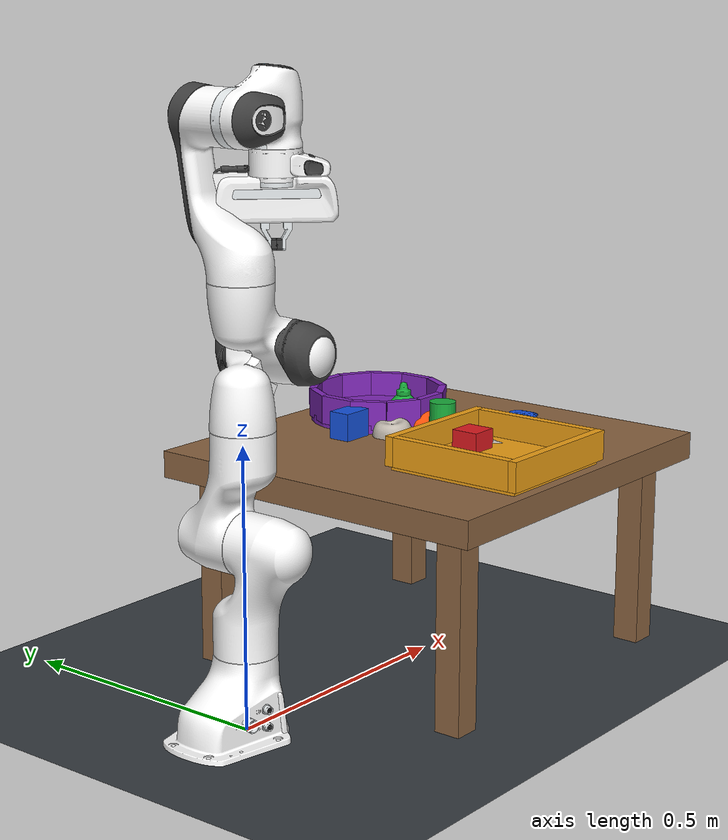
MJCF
<mujoco model="zju_graspbench">
  <include file="vendor/franka_emika_panda/panda.xml"/>

  <compiler angle="radian" autolimits="true"/>
  <option timestep="0.002" gravity="0 0 -9.81" integrator="implicitfast" cone="elliptic">
    <flag multiccd="enable"/>
  </option>

  <visual>
    <global azimuth="135" elevation="-25" offwidth="960" offheight="720"/>
    <quality shadowsize="2048"/>
    <map znear="0.01" zfar="5"/>
  </visual>

  <asset>
    <texture name="ground_tex" type="2d" builtin="checker" rgb1="0.19 0.21 0.23"
      rgb2="0.23 0.25 0.27" width="256" height="256"/>
    <material name="ground_mat" texture="ground_tex" texrepeat="4 4" reflectance="0.05"/>
    <material name="table_mat" rgba="0.54 0.39 0.25 1" roughness="0.8"/>
    <material name="red_mat" rgba="0.86 0.10 0.12 1" roughness="0.65"/>
    <material name="green_mat" rgba="0.10 0.67 0.23 1" roughness="0.65"/>
    <material name="blue_mat" rgba="0.08 0.32 0.86 1" roughness="0.65"/>
    <material name="square_tray_mat" rgba="0.92 0.62 0.08 1" roughness="0.5"/>
    <material name="round_tray_mat" rgba="0.50 0.16 0.72 1" roughness="0.5"/>

    <!-- Visual YCB meshes.  Physics uses the low-complexity proxy geoms below. -->
    <texture name="banana_tex" type="2d" file="ycb/011_banana/texture_map.png"/>
    <material name="banana_mat" texture="banana_tex" roughness="0.65"/>
    <mesh name="banana_mesh" file="../../../ycb/011_banana/textured.obj"/>
    <!-- Generated offline by scripts/generate_banana_vhacd.py. -->
    <mesh name="banana_vhacd_00" file="../../../ycb/011_banana/collision/banana_vhacd_00.obj"/>
    <mesh name="banana_vhacd_01" file="../../../ycb/011_banana/collision/banana_vhacd_01.obj"/>
    <mesh name="banana_vhacd_02" file="../../../ycb/011_banana/collision/banana_vhacd_02.obj"/>
    <mesh name="banana_vhacd_03" file="../../../ycb/011_banana/collision/banana_vhacd_03.obj"/>
    <mesh name="banana_vhacd_04" file="../../../ycb/011_banana/collision/banana_vhacd_04.obj"/>
    <mesh name="banana_vhacd_05" file="../../../ycb/011_banana/collision/banana_vhacd_05.obj"/>
    <texture name="apple_tex" type="2d" file="ycb/013_apple/texture_map.png"/>
    <material name="apple_mat" texture="apple_tex" roughness="0.6"/>
    <mesh name="apple_mesh" file="../../../ycb/013_apple/textured.obj"/>
    <texture name="orange_tex" type="2d" file="ycb/017_orange/texture_map.png"/>
    <material name="orange_mat" rgba="0.95 0.31 0.03 1" roughness="0.65"/>
    <mesh name="orange_mesh" file="../../../ycb/017_orange/textured.obj"/>
    <texture name="mustard_tex" type="2d" file="ycb/006_mustard_bottle/texture_map.png"/>
    <material name="mustard_mat" rgba="0.10 0.67 0.23 1" roughness="0.55"/>
    <mesh name="mustard_mesh" file="../../../ycb/006_mustard_bottle/textured.obj"/>
    <mesh name="mustard_mesh_small" file="../../../ycb/006_mustard_bottle/textured.obj" scale="0.7 0.7 0.7"/>
    <texture name="meat_can_tex" type="2d" file="ycb/010_potted_meat_can/texture_map.png"/>
    <material name="meat_can_mat" rgba="0.08 0.32 0.86 1" roughness="0.55"/>
    <mesh name="meat_can_mesh" file="../../../ycb/010_potted_meat_can/textured.obj"/>
    <texture name="scissors_tex" type="2d" file="ycb/037_scissors/texture_map.png"/>
    <material name="scissors_mat" texture="scissors_tex" roughness="0.45"/>
    <mesh name="scissors_mesh" file="../../../ycb/037_scissors/textured.obj"/>
    <texture name="marker_tex" type="2d" file="ycb/040_large_marker/texture_map.png"/>
    <material name="marker_mat" texture="marker_tex" roughness="0.35"/>
    <mesh name="marker_mesh" file="../../../ycb/040_large_marker/textured.obj"/>
  </asset>

  <default>
    <default class="course_object">
      <joint damping="0.001"/>
      <geom density="550" friction="1.2 0.01 0.001" solref="0.006 1"
        solimp="0.95 0.99 0.001" condim="4" group="1"/>
    </default>
  </default>

  <worldbody>
    <light name="key" pos="0.2 -0.4 1.8" dir="0.2 0.25 -1" diffuse="0.85 0.85 0.85"/>
    <light name="fill" pos="1.2 0.8 1.2" dir="-0.6 -0.3 -1" diffuse="0.45 0.45 0.45"/>

    <camera name="front" pos="1.20 0 0.92" xyaxes="0 1 0 -0.48 0 0.877" fovy="48"/>
    <camera name="overhead" pos="0.52 0 1.38" xyaxes="0 1 0 -1 0 0" fovy="46"/>
    <camera name="diagonal" pos="1.10 -0.95 1.05"
      xyaxes="0.654 0.756 0 -0.436 0.377 0.817" fovy="48"/>

    <geom name="floor" type="plane" size="2 2 0.05" pos="0 0 -0.01"
      material="ground_mat" friction="1 0.01 0.001" group="0"/>

    <body name="table" pos="0.52 0 0.375">
      <geom name="tabletop" type="box" size="0.36 0.34 0.025" material="table_mat"
        friction="1.1 0.01 0.001" group="0"/>
      <geom name="leg_front_left" type="box" size="0.025 0.025 0.19" pos="0.29 -0.27 -0.19"
        material="table_mat" group="0"/>
      <geom name="leg_front_right" type="box" size="0.025 0.025 0.19" pos="0.29 0.27 -0.19"
        material="table_mat" group="0"/>
      <geom name="leg_back_left" type="box" size="0.025 0.025 0.19" pos="-0.29 -0.27 -0.19"
        material="table_mat" group="0"/>
      <geom name="leg_back_right" type="box" size="0.025 0.025 0.19" pos="-0.29 0.27 -0.19"
        material="table_mat" group="0"/>
    </body>

    <!-- Fixed-base containers whose world pose is randomized by GraspEnv.reset(). -->
    <body name="square_tray" pos="0.45 -0.19 0.4">
      <geom name="square_tray_floor" type="box" size="0.130 0.130 0.008"
        pos="0 0 0.008" material="square_tray_mat" friction="1.1 0.01 0.001" group="1"/>
      <geom name="square_tray_wall_north" type="box" size="0.138 0.008 0.027"
        pos="0 0.130 0.035" material="square_tray_mat" group="1"/>
      <geom name="square_tray_wall_south" type="box" size="0.138 0.008 0.027"
        pos="0 -0.130 0.035" material="square_tray_mat" group="1"/>
      <geom name="square_tray_wall_east" type="box" size="0.008 0.122 0.027"
        pos="0.130 0 0.035" material="square_tray_mat" group="1"/>
      <geom name="square_tray_wall_west" type="box" size="0.008 0.122 0.027"
        pos="-0.130 0 0.035" material="square_tray_mat" group="1"/>
    </body>

    <body name="round_tray" pos="0.60 0.19 0.4">
      <geom name="round_tray_floor" type="cylinder" size="0.130 0.008" pos="0 0 0.008"
        material="round_tray_mat" friction="1.1 0.01 0.001" group="1"/>
      <geom name="round_tray_wall_0" type="box" size="0.007 0.034 0.027" pos="0.122 0 0.035" material="round_tray_mat" group="1"/>
      <geom name="round_tray_wall_1" type="box" size="0.007 0.034 0.027" pos="0.106 0.061 0.035" euler="0 0 0.524" material="round_tray_mat" group="1"/>
      <geom name="round_tray_wall_2" type="box" size="0.007 0.034 0.027" pos="0.061 0.106 0.035" euler="0 0 1.047" material="round_tray_mat" group="1"/>
      <geom name="round_tray_wall_3" type="box" size="0.007 0.034 0.027" pos="0 0.122 0.035" euler="0 0 1.571" material="round_tray_mat" group="1"/>
      <geom name="round_tray_wall_4" type="box" size="0.007 0.034 0.027" pos="-0.061 0.106 0.035" euler="0 0 2.094" material="round_tray_mat" group="1"/>
      <geom name="round_tray_wall_5" type="box" size="0.007 0.034 0.027" pos="-0.106 0.061 0.035" euler="0 0 2.618" material="round_tray_mat" group="1"/>
      <geom name="round_tray_wall_6" type="box" size="0.007 0.034 0.027" pos="-0.122 0 0.035" euler="0 0 3.142" material="round_tray_mat" group="1"/>
      <geom name="round_tray_wall_7" type="box" size="0.007 0.034 0.027" pos="-0.106 -0.061 0.035" euler="0 0 -2.618" material="round_tray_mat" group="1"/>
      <geom name="round_tray_wall_8" type="box" size="0.007 0.034 0.027" pos="-0.061 -0.106 0.035" euler="0 0 -2.094" material="round_tray_mat" group="1"/>
      <geom name="round_tray_wall_9" type="box" size="0.007 0.034 0.027" pos="0 -0.122 0.035" euler="0 0 -1.571" material="round_tray_mat" group="1"/>
      <geom name="round_tray_wall_10" type="box" size="0.007 0.034 0.027" pos="0.061 -0.106 0.035" euler="0 0 -1.047" material="round_tray_mat" group="1"/>
      <geom name="round_tray_wall_11" type="box" size="0.007 0.034 0.027" pos="0.106 -0.061 0.035" euler="0 0 -0.524" material="round_tray_mat" group="1"/>
    </body>

    <body name="red_cube" pos="0.48 -0.12 0.426">
      <freejoint name="red_cube_free"/>
      <geom name="red_cube_geom" class="course_object" type="box" size="0.026 0.026 0.026"
        material="red_mat"/>
    </body>

    <body name="green_cylinder" pos="0.58 0.02 0.431">
      <freejoint name="green_cylinder_free"/>
      <geom name="green_cylinder_geom" class="course_object" type="cylinder" size="0.025 0.031"
        material="green_mat"/>
    </body>

    <body name="blue_box" pos="0.45 0.14 0.426">
      <freejoint name="blue_box_free"/>
      <geom name="blue_box_geom" class="course_object" type="box" size="0.031 0.021 0.026"
        material="blue_mat"/>
    </body>

    <!-- YCB visual meshes with stable collision proxies. -->
    <body name="banana" pos="0.57 -0.08 0.42">
      <freejoint name="banana_free"/>
      <inertial pos="0 0 0" mass="0.066" diaginertia="0.00018 0.00004 0.00018"/>
      <geom name="banana_visual" type="mesh" mesh="banana_mesh" material="banana_mat"
        pos="-0.011476 0.007344 -0.017963" contype="0" conaffinity="0" group="1"/>
      <!-- Six VHACD-derived convex macro-hulls follow the curved render mesh. -->
      <geom name="banana_collision_00" class="course_object" type="mesh" mesh="banana_vhacd_00"
        pos="-0.011476 0.007344 -0.017963" rgba="0 0 0 0"/>
      <geom name="banana_collision_01" class="course_object" type="mesh" mesh="banana_vhacd_01"
        pos="-0.011476 0.007344 -0.017963" rgba="0 0 0 0"/>
      <geom name="banana_collision_02" class="course_object" type="mesh" mesh="banana_vhacd_02"
        pos="-0.011476 0.007344 -0.017963" rgba="0 0 0 0"/>
      <geom name="banana_collision_03" class="course_object" type="mesh" mesh="banana_vhacd_03"
        pos="-0.011476 0.007344 -0.017963" rgba="0 0 0 0"/>
      <geom name="banana_collision_04" class="course_object" type="mesh" mesh="banana_vhacd_04"
        pos="-0.011476 0.007344 -0.017963" rgba="0 0 0 0"/>
      <geom name="banana_collision_05" class="course_object" type="mesh" mesh="banana_vhacd_05"
        pos="-0.011476 0.007344 -0.017963" rgba="0 0 0 0"/>
    </body>

    <body name="apple" pos="0.51 0.08 0.438">
      <freejoint name="apple_free"/>
      <inertial pos="0 0 0" mass="0.068" diaginertia="0.00004 0.00004 0.00004"/>
      <geom name="apple_visual" type="mesh" mesh="apple_mesh" material="apple_mat"
        pos="-0.000859 0.003784 -0.035552" contype="0" conaffinity="0" group="1"/>
      <geom name="apple_collision" class="course_object" type="ellipsoid" size="0.038 0.038 0.036" rgba="0 0 0 0"/>
    </body>

    <body name="orange" pos="0.58 0.06 0.438">
      <freejoint name="orange_free"/>
      <inertial pos="0 0 0" mass="0.130" diaginertia="0.00008 0.00008 0.00008"/>
      <geom name="orange_visual" type="mesh" mesh="orange_mesh" material="orange_mat"
        pos="0.006935 0.018360 -0.035428" contype="0" conaffinity="0" group="1"/>
      <geom name="orange_collision" class="course_object" type="ellipsoid" size="0.037 0.037 0.036" rgba="0 0 0 0"/>
    </body>

    <body name="mustard_bottle" pos="0.60 0.12 0.467">
      <freejoint name="mustard_bottle_free"/>
      <inertial pos="0 0 0" mass="0.160" diaginertia="0.00032 0.00032 0.00007"/>
      <geom name="mustard_visual" type="mesh" mesh="mustard_mesh_small" material="mustard_mat"
        pos="0.010737 0.016449 -0.064749" contype="0" conaffinity="0" group="1"/>
      <geom name="mustard_collision" class="course_object" type="box" size="0.034 0.024 0.067" rgba="0 0 0 0"/>
    </body>

    <body name="potted_meat_can" pos="0.62 -0.12 0.442">
      <freejoint name="potted_meat_can_free"/>
      <inertial pos="0 0 0" mass="0.180" diaginertia="0.00022 0.00035 0.00022"/>
      <geom name="potted_meat_can_visual" type="mesh" mesh="meat_can_mesh" material="meat_can_mat"
        pos="0.032784 0.026552 -0.038584" contype="0" conaffinity="0" group="1"/>
      <geom name="potted_meat_can_collision" class="course_object" type="box" size="0.050 0.030 0.042" rgba="0 0 0 0"/>
    </body>

    <body name="scissors" pos="0.49 -0.05 0.409">
      <freejoint name="scissors_free"/>
      <inertial pos="0 0 0" mass="0.080" diaginertia="0.00028 0.00007 0.00030"/>
      <geom name="scissors_visual" type="mesh" mesh="scissors_mesh" material="scissors_mat"
        pos="-0.010022 -0.035939 -0.007474" contype="0" conaffinity="0" group="1"/>
      <geom name="scissors_collision" class="course_object" type="box" size="0.048 0.101 0.008" rgba="0 0 0 0"/>
    </body>

    <body name="marker" pos="0.61 -0.05 0.411">
      <freejoint name="marker_free"/>
      <inertial pos="0 0 0" mass="0.030" diaginertia="0.00004 0.00002 0.00004"/>
      <geom name="marker_visual" type="mesh" mesh="marker_mesh" material="marker_mat"
        pos="0.035690 0.005082 -0.009174" contype="0" conaffinity="0" group="1"/>
      <geom name="marker_collision" class="course_object" type="capsule" size="0.011 0.050"
        euler="1.5708 0 0" rgba="0 0 0 0"/>
    </body>
  </worldbody>
</mujoco>

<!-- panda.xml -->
<mujoco model="panda">
  <compiler angle="radian" meshdir="vendor/franka_emika_panda/assets" autolimits="true"/>

  <option integrator="implicitfast"/>

  <default>
    <default class="panda">
      <material specular="0.5" shininess="0.25"/>
      <joint armature="0.1" damping="1" axis="0 0 1" range="-2.8973 2.8973"/>
      <general dyntype="none" biastype="affine" ctrlrange="-2.8973 2.8973" forcerange="-87 87"/>
      <default class="finger">
        <joint axis="0 1 0" type="slide" range="0 0.04"/>
      </default>

      <default class="visual">
        <geom type="mesh" contype="0" conaffinity="0" group="2"/>
      </default>
      <default class="collision">
        <geom type="mesh" group="3"/>
        <default class="fingertip_pad_collision_1">
          <geom type="box" size="0.0085 0.004 0.0085" pos="0 0.0055 0.0445"/>
        </default>
        <default class="fingertip_pad_collision_2">
          <geom type="box" size="0.003 0.002 0.003" pos="0.0055 0.002 0.05"/>
        </default>
        <default class="fingertip_pad_collision_3">
          <geom type="box" size="0.003 0.002 0.003" pos="-0.0055 0.002 0.05"/>
        </default>
        <default class="fingertip_pad_collision_4">
          <geom type="box" size="0.003 0.002 0.0035" pos="0.0055 0.002 0.0395"/>
        </default>
        <default class="fingertip_pad_collision_5">
          <geom type="box" size="0.003 0.002 0.0035" pos="-0.0055 0.002 0.0395"/>
        </default>
      </default>
    </default>
  </default>

  <asset>
    <material class="panda" name="white" rgba="1 1 1 1"/>
    <material class="panda" name="off_white" rgba="0.901961 0.921569 0.929412 1"/>
    <material class="panda" name="black" rgba="0.25 0.25 0.25 1"/>
    <material class="panda" name="green" rgba="0 1 0 1"/>
    <material class="panda" name="light_blue" rgba="0.039216 0.541176 0.780392 1"/>

    <!-- Collision meshes -->
    <mesh name="link0_c" file="link0.stl"/>
    <mesh name="link1_c" file="link1.stl"/>
    <mesh name="link2_c" file="link2.stl"/>
    <mesh name="link3_c" file="link3.stl"/>
    <mesh name="link4_c" file="link4.stl"/>
    <mesh name="link5_c0" file="link5_collision_0.obj"/>
    <mesh name="link5_c1" file="link5_collision_1.obj"/>
    <mesh name="link5_c2" file="link5_collision_2.obj"/>
    <mesh name="link6_c" file="link6.stl"/>
    <mesh name="link7_c" file="link7.stl"/>
    <mesh name="hand_c" file="hand.stl"/>

    <!-- Visual meshes -->
    <mesh file="link0_0.obj"/>
    <mesh file="link0_1.obj"/>
    <mesh file="link0_2.obj"/>
    <mesh file="link0_3.obj"/>
    <mesh file="link0_4.obj"/>
    <mesh file="link0_5.obj"/>
    <mesh file="link0_7.obj"/>
    <mesh file="link0_8.obj"/>
    <mesh file="link0_9.obj"/>
    <mesh file="link0_10.obj"/>
    <mesh file="link0_11.obj"/>
    <mesh file="link1.obj"/>
    <mesh file="link2.obj"/>
    <mesh file="link3_0.obj"/>
    <mesh file="link3_1.obj"/>
    <mesh file="link3_2.obj"/>
    <mesh file="link3_3.obj"/>
    <mesh file="link4_0.obj"/>
    <mesh file="link4_1.obj"/>
    <mesh file="link4_2.obj"/>
    <mesh file="link4_3.obj"/>
    <mesh file="link5_0.obj"/>
    <mesh file="link5_1.obj"/>
    <mesh file="link5_2.obj"/>
    <mesh file="link6_0.obj"/>
    <mesh file="link6_1.obj"/>
    <mesh file="link6_2.obj"/>
    <mesh file="link6_3.obj"/>
    <mesh file="link6_4.obj"/>
    <mesh file="link6_5.obj"/>
    <mesh file="link6_6.obj"/>
    <mesh file="link6_7.obj"/>
    <mesh file="link6_8.obj"/>
    <mesh file="link6_9.obj"/>
    <mesh file="link6_10.obj"/>
    <mesh file="link6_11.obj"/>
    <mesh file="link6_12.obj"/>
    <mesh file="link6_13.obj"/>
    <mesh file="link6_14.obj"/>
    <mesh file="link6_15.obj"/>
    <mesh file="link6_16.obj"/>
    <mesh file="link7_0.obj"/>
    <mesh file="link7_1.obj"/>
    <mesh file="link7_2.obj"/>
    <mesh file="link7_3.obj"/>
    <mesh file="link7_4.obj"/>
    <mesh file="link7_5.obj"/>
    <mesh file="link7_6.obj"/>
    <mesh file="link7_7.obj"/>
    <mesh file="hand_0.obj"/>
    <mesh file="hand_1.obj"/>
    <mesh file="hand_2.obj"/>
    <mesh file="hand_3.obj"/>
    <mesh file="hand_4.obj"/>
    <mesh file="finger_0.obj"/>
    <mesh file="finger_1.obj"/>
  </asset>

  <worldbody>
    <light name="top" pos="0 0 2" mode="trackcom"/>
    <body name="link0" childclass="panda">
      <inertial mass="0.629769" pos="-0.041018 -0.00014 0.049974"
        fullinertia="0.00315 0.00388 0.004285 8.2904e-7 0.00015 8.2299e-6"/>
      <geom mesh="link0_0" material="off_white" class="visual"/>
      <geom mesh="link0_1" material="black" class="visual"/>
      <geom mesh="link0_2" material="off_white" class="visual"/>
      <geom mesh="link0_3" material="black" class="visual"/>
      <geom mesh="link0_4" material="off_white" class="visual"/>
      <geom mesh="link0_5" material="black" class="visual"/>
      <geom mesh="link0_7" material="white" class="visual"/>
      <geom mesh="link0_8" material="white" class="visual"/>
      <geom mesh="link0_9" material="black" class="visual"/>
      <geom mesh="link0_10" material="off_white" class="visual"/>
      <geom mesh="link0_11" material="white" class="visual"/>
      <geom mesh="link0_c" class="collision"/>
      <body name="link1" pos="0 0 0.333">
        <inertial mass="4.970684" pos="0.003875 0.002081 -0.04762"
          fullinertia="0.70337 0.70661 0.0091170 -0.00013900 0.0067720 0.019169"/>
        <joint name="joint1"/>
        <geom material="white" mesh="link1" class="visual"/>
        <geom mesh="link1_c" class="collision"/>
        <body name="link2" quat="1 -1 0 0">
          <inertial mass="0.646926" pos="-0.003141 -0.02872 0.003495"
            fullinertia="0.0079620 2.8110e-2 2.5995e-2 -3.925e-3 1.0254e-2 7.04e-4"/>
          <joint name="joint2" range="-1.7628 1.7628"/>
          <geom material="white" mesh="link2" class="visual"/>
          <geom mesh="link2_c" class="collision"/>
          <body name="link3" pos="0 -0.316 0" quat="1 1 0 0">
            <joint name="joint3"/>
            <inertial mass="3.228604" pos="2.7518e-2 3.9252e-2 -6.6502e-2"
              fullinertia="3.7242e-2 3.6155e-2 1.083e-2 -4.761e-3 -1.1396e-2 -1.2805e-2"/>
            <geom mesh="link3_0" material="white" class="visual"/>
            <geom mesh="link3_1" material="white" class="visual"/>
            <geom mesh="link3_2" material="white" class="visual"/>
            <geom mesh="link3_3" material="black" class="visual"/>
            <geom mesh="link3_c" class="collision"/>
            <body name="link4" pos="0.0825 0 0" quat="1 1 0 0">
              <inertial mass="3.587895" pos="-5.317e-2 1.04419e-1 2.7454e-2"
                fullinertia="2.5853e-2 1.9552e-2 2.8323e-2 7.796e-3 -1.332e-3 8.641e-3"/>
              <joint name="joint4" range="-3.0718 -0.0698"/>
              <geom mesh="link4_0" material="white" class="visual"/>
              <geom mesh="link4_1" material="white" class="visual"/>
              <geom mesh="link4_2" material="black" class="visual"/>
              <geom mesh="link4_3" material="white" class="visual"/>
              <geom mesh="link4_c" class="collision"/>
              <body name="link5" pos="-0.0825 0.384 0" quat="1 -1 0 0">
                <inertial mass="1.225946" pos="-1.1953e-2 4.1065e-2 -3.8437e-2"
                  fullinertia="3.5549e-2 2.9474e-2 8.627e-3 -2.117e-3 -4.037e-3 2.29e-4"/>
                <joint name="joint5"/>
                <geom mesh="link5_0" material="black" class="visual"/>
                <geom mesh="link5_1" material="white" class="visual"/>
                <geom mesh="link5_2" material="white" class="visual"/>
                <geom mesh="link5_c0" class="collision"/>
                <geom mesh="link5_c1" class="collision"/>
                <geom mesh="link5_c2" class="collision"/>
                <body name="link6" quat="1 1 0 0">
                  <inertial mass="1.666555" pos="6.0149e-2 -1.4117e-2 -1.0517e-2"
                    fullinertia="1.964e-3 4.354e-3 5.433e-3 1.09e-4 -1.158e-3 3.41e-4"/>
                  <joint name="joint6" range="-0.0175 3.7525"/>
                  <geom mesh="link6_0" material="off_white" class="visual"/>
                  <geom mesh="link6_1" material="white" class="visual"/>
                  <geom mesh="link6_2" material="black" class="visual"/>
                  <geom mesh="link6_3" material="white" class="visual"/>
                  <geom mesh="link6_4" material="white" class="visual"/>
                  <geom mesh="link6_5" material="white" class="visual"/>
                  <geom mesh="link6_6" material="white" class="visual"/>
                  <geom mesh="link6_7" material="light_blue" class="visual"/>
                  <geom mesh="link6_8" material="light_blue" class="visual"/>
                  <geom mesh="link6_9" material="black" class="visual"/>
                  <geom mesh="link6_10" material="black" class="visual"/>
                  <geom mesh="link6_11" material="white" class="visual"/>
                  <geom mesh="link6_12" material="green" class="visual"/>
                  <geom mesh="link6_13" material="white" class="visual"/>
                  <geom mesh="link6_14" material="black" class="visual"/>
                  <geom mesh="link6_15" material="black" class="visual"/>
                  <geom mesh="link6_16" material="white" class="visual"/>
                  <geom mesh="link6_c" class="collision"/>
                  <body name="link7" pos="0.088 0 0" quat="1 1 0 0">
                    <inertial mass="7.35522e-01" pos="1.0517e-2 -4.252e-3 6.1597e-2"
                      fullinertia="1.2516e-2 1.0027e-2 4.815e-3 -4.28e-4 -1.196e-3 -7.41e-4"/>
                    <joint name="joint7"/>
                    <geom mesh="link7_0" material="white" class="visual"/>
                    <geom mesh="link7_1" material="black" class="visual"/>
                    <geom mesh="link7_2" material="black" class="visual"/>
                    <geom mesh="link7_3" material="black" class="visual"/>
                    <geom mesh="link7_4" material="black" class="visual"/>
                    <geom mesh="link7_5" material="black" class="visual"/>
                    <geom mesh="link7_6" material="black" class="visual"/>
                    <geom mesh="link7_7" material="white" class="visual"/>
                    <geom mesh="link7_c" class="collision"/>
                    <body name="hand" pos="0 0 0.107" quat="0.9238795 0 0 -0.3826834">
                      <inertial mass="0.73" pos="-0.01 0 0.03" diaginertia="0.001 0.0025 0.0017"/>
                      <!-- Course addition: task-space control point centered between the fingertip pads. -->
                      <site name="grasp_site" pos="0 0 0.103" size="0.004" rgba="1 0.2 0.1 0.8" group="4"/>
                      <geom mesh="hand_0" material="off_white" class="visual"/>
                      <geom mesh="hand_1" material="black" class="visual"/>
                      <geom mesh="hand_2" material="black" class="visual"/>
                      <geom mesh="hand_3" material="white" class="visual"/>
                      <geom mesh="hand_4" material="off_white" class="visual"/>
                      <geom mesh="hand_c" class="collision"/>
                      <body name="left_finger" pos="0 0 0.0584">
                        <inertial mass="0.015" pos="0 0 0" diaginertia="2.375e-6 2.375e-6 7.5e-7"/>
                        <joint name="finger_joint1" class="finger"/>
                        <geom mesh="finger_0" material="off_white" class="visual"/>
                        <geom mesh="finger_1" material="black" class="visual"/>
                        <geom mesh="finger_0" class="collision"/>
                        <geom class="fingertip_pad_collision_1"/>
                        <geom class="fingertip_pad_collision_2"/>
                        <geom class="fingertip_pad_collision_3"/>
                        <geom class="fingertip_pad_collision_4"/>
                        <geom class="fingertip_pad_collision_5"/>
                      </body>
                      <body name="right_finger" pos="0 0 0.0584" quat="0 0 0 1">
                        <inertial mass="0.015" pos="0 0 0" diaginertia="2.375e-6 2.375e-6 7.5e-7"/>
                        <joint name="finger_joint2" class="finger"/>
                        <geom mesh="finger_0" material="off_white" class="visual"/>
                        <geom mesh="finger_1" material="black" class="visual"/>
                        <geom mesh="finger_0" class="collision"/>
                        <geom class="fingertip_pad_collision_1"/>
                        <geom class="fingertip_pad_collision_2"/>
                        <geom class="fingertip_pad_collision_3"/>
                        <geom class="fingertip_pad_collision_4"/>
                        <geom class="fingertip_pad_collision_5"/>
                      </body>
                    </body>
                  </body>
                </body>
              </body>
            </body>
          </body>
        </body>
      </body>
    </body>
  </worldbody>

  <tendon>
    <fixed name="split">
      <joint joint="finger_joint1" coef="0.5"/>
      <joint joint="finger_joint2" coef="0.5"/>
    </fixed>
  </tendon>

  <equality>
    <joint joint1="finger_joint1" joint2="finger_joint2" solimp="0.95 0.99 0.001" solref="0.005 1"/>
  </equality>

  <actuator>
    <general class="panda" name="actuator1" joint="joint1" gainprm="4500" biasprm="0 -4500 -450"/>
    <general class="panda" name="actuator2" joint="joint2" gainprm="4500" biasprm="0 -4500 -450"
      ctrlrange="-1.7628 1.7628"/>
    <general class="panda" name="actuator3" joint="joint3" gainprm="3500" biasprm="0 -3500 -350"/>
    <general class="panda" name="actuator4" joint="joint4" gainprm="3500" biasprm="0 -3500 -350"
      ctrlrange="-3.0718 -0.0698"/>
    <general class="panda" name="actuator5" joint="joint5" gainprm="2000" biasprm="0 -2000 -200" forcerange="-12 12"/>
    <general class="panda" name="actuator6" joint="joint6" gainprm="2000" biasprm="0 -2000 -200" forcerange="-12 12"
      ctrlrange="-0.0175 3.7525"/>
    <general class="panda" name="actuator7" joint="joint7" gainprm="2000" biasprm="0 -2000 -200" forcerange="-12 12"/>
    <!-- Remap original ctrlrange (0, 0.04) to (0, 255): 0.04 * 100 / 255 = 0.01568627451 -->
    <general class="panda" name="actuator8" tendon="split" forcerange="-100 100" ctrlrange="0 255"
      gainprm="0.01568627451 0 0" biasprm="0 -100 -10"/>
  </actuator>

  <contact>
    <exclude body1="link0" body2="link1"/>
  </contact>
</mujoco>
